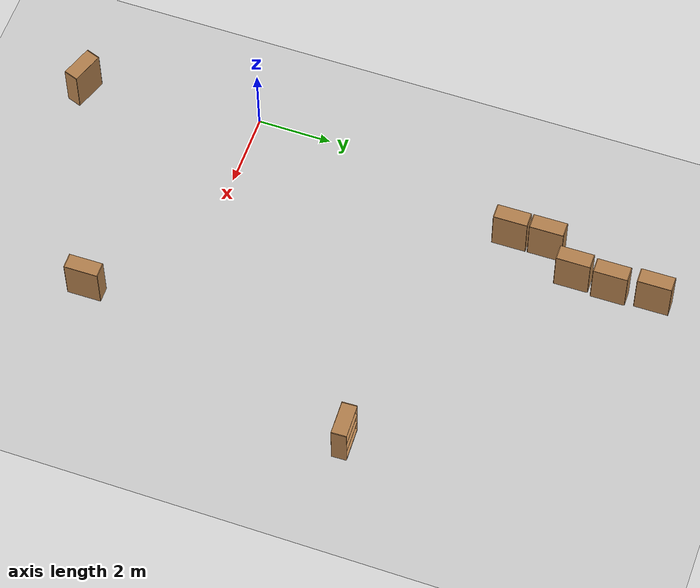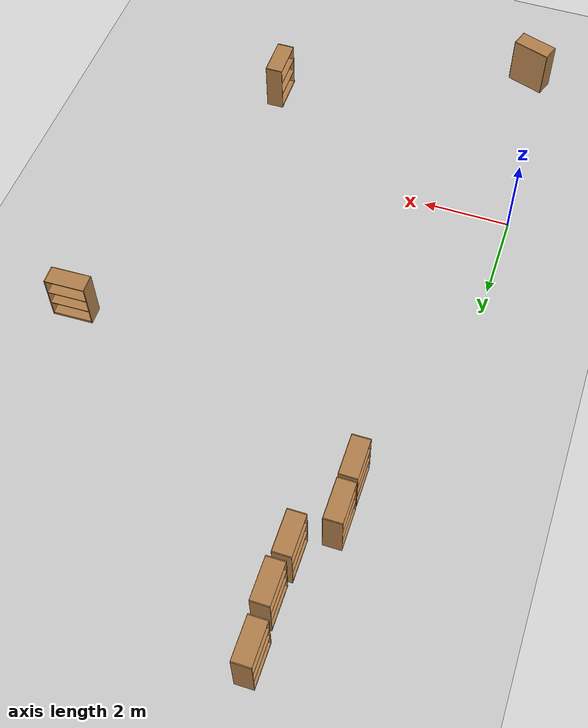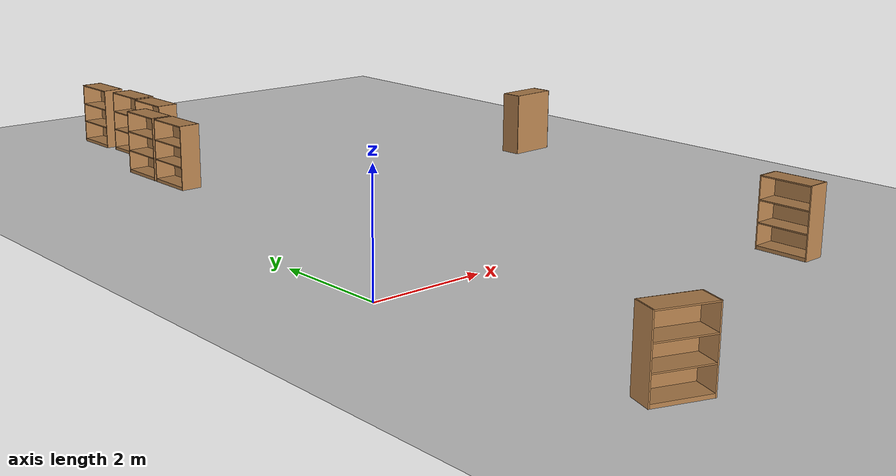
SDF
<sdf version="1.6">
 <world name="default">
  <model name="ground_plane">
   <static>1</static>
   <link name="link">
    <collision name="collision">
     <geometry><plane><normal>0 0 1</normal><size>100 100</size></plane></geometry>
     <surface>
      <contact><collide_bitmask>65535</collide_bitmask></contact>
      <friction><ode><mu>100</mu><mu2>50</mu2></ode></friction>
     </surface>
    </collision>
    <visual name="visual">
     <cast_shadows>0</cast_shadows>
     <geometry><plane><normal>0 0 1</normal><size>100 100</size></plane></geometry>
     <material>
      <script><uri>file://media/materials/scripts/gazebo.material</uri><name>Gazebo/Grey</name></script>
     </material>
    </visual>
   </link>
  </model>
  <model name="bookshelf_clone_2_clone_clone_0_clone_3_clone_clone_3">
   <static>1</static>
   <link name="link">
    <inertial><mass>1</mass></inertial>
    <collision name="back">
     <pose>0 0.005 0.6 0 -0 0</pose>
     <geometry><box><size>0.9 0.01 1.2</size></box></geometry>
    </collision>
    <visual name="visual1">
     <pose>0 0.005 0.6 0 -0 0</pose>
     <geometry><box><size>0.9 0.01 1.2</size></box></geometry>
     <material>
      <script><uri>file://media/materials/scripts/gazebo.material</uri><name>Gazebo/Wood</name></script>
     </material>
    </visual>
    <collision name="left_side">
     <pose>0.45 -0.195 0.6 0 -0 0</pose>
     <geometry><box><size>0.02 0.4 1.2</size></box></geometry>
    </collision>
    <visual name="visual2">
     <pose>0.45 -0.195 0.6 0 -0 0</pose>
     <geometry><box><size>0.02 0.4 1.2</size></box></geometry>
     <material>
      <script><uri>file://media/materials/scripts/gazebo.material</uri><name>Gazebo/Wood</name></script>
     </material>
    </visual>
    <collision name="right_side">
     <pose>-0.45 -0.195 0.6 0 -0 0</pose>
     <geometry><box><size>0.02 0.4 1.2</size></box></geometry>
    </collision>
    <visual name="visual3">
     <pose>-0.45 -0.195 0.6 0 -0 0</pose>
     <geometry><box><size>0.02 0.4 1.2</size></box></geometry>
     <material>
      <script><uri>file://media/materials/scripts/gazebo.material</uri><name>Gazebo/Wood</name></script>
     </material>
    </visual>
    <collision name="bottom">
     <pose>0 -0.195 0.03 0 -0 0</pose>
     <geometry><box><size>0.88 0.4 0.06</size></box></geometry>
    </collision>
    <visual name="visual4">
     <pose>0 -0.195 0.03 0 -0 0</pose>
     <geometry><box><size>0.88 0.4 0.06</size></box></geometry>
     <material>
      <script><uri>file://media/materials/scripts/gazebo.material</uri><name>Gazebo/Wood</name></script>
     </material>
    </visual>
    <collision name="top">
     <pose>0 -0.195 1.19 0 -0 0</pose>
     <geometry><box><size>0.88 0.4 0.02</size></box></geometry>
    </collision>
    <visual name="visual5">
     <pose>0 -0.195 1.19 0 -0 0</pose>
     <geometry><box><size>0.88 0.4 0.02</size></box></geometry>
     <material>
      <script><uri>file://media/materials/scripts/gazebo.material</uri><name>Gazebo/Wood</name></script>
     </material>
    </visual>
    <collision name="low_shelf">
     <pose>0 -0.195 0.43 0 -0 0</pose>
     <geometry><box><size>0.88 0.4 0.02</size></box></geometry>
    </collision>
    <visual name="visual6">
     <pose>0 -0.195 0.43 0 -0 0</pose>
     <geometry><box><size>0.88 0.4 0.02</size></box></geometry>
     <material>
      <script><uri>file://media/materials/scripts/gazebo.material</uri><name>Gazebo/Wood</name></script>
     </material>
    </visual>
    <collision name="high_shelf">
     <pose>0 -0.195 0.8 0 -0 0</pose>
     <geometry><box><size>0.88 0.4 0.02</size></box></geometry>
    </collision>
    <visual name="visual7">
     <pose>0 -0.195 0.8 0 -0 0</pose>
     <geometry><box><size>0.88 0.4 0.02</size></box></geometry>
     <material>
      <script><uri>file://media/materials/scripts/gazebo.material</uri><name>Gazebo/Wood</name></script>
     </material>
    </visual>
   </link>
   <pose>8.46412 5.18695 0 0 0 -3.10717</pose>
  </model>
  <model name="bookshelf_clone_2_clone_clone_0_clone_3_clone_0_clone_1_clone_clone_0_clone_1_clone_1_clone">
   <static>1</static>
   <link name="link">
    <inertial><mass>1</mass></inertial>
    <collision name="back">
     <pose>0 0.005 0.6 0 -0 0</pose>
     <geometry><box><size>0.9 0.01 1.2</size></box></geometry>
    </collision>
    <visual name="visual1">
     <pose>0 0.005 0.6 0 -0 0</pose>
     <geometry><box><size>0.9 0.01 1.2</size></box></geometry>
     <material>
      <script><uri>file://media/materials/scripts/gazebo.material</uri><name>Gazebo/Wood</name></script>
     </material>
    </visual>
    <collision name="left_side">
     <pose>0.45 -0.195 0.6 0 -0 0</pose>
     <geometry><box><size>0.02 0.4 1.2</size></box></geometry>
    </collision>
    <visual name="visual2">
     <pose>0.45 -0.195 0.6 0 -0 0</pose>
     <geometry><box><size>0.02 0.4 1.2</size></box></geometry>
     <material>
      <script><uri>file://media/materials/scripts/gazebo.material</uri><name>Gazebo/Wood</name></script>
     </material>
    </visual>
    <collision name="right_side">
     <pose>-0.45 -0.195 0.6 0 -0 0</pose>
     <geometry><box><size>0.02 0.4 1.2</size></box></geometry>
    </collision>
    <visual name="visual3">
     <pose>-0.45 -0.195 0.6 0 -0 0</pose>
     <geometry><box><size>0.02 0.4 1.2</size></box></geometry>
     <material>
      <script><uri>file://media/materials/scripts/gazebo.material</uri><name>Gazebo/Wood</name></script>
     </material>
    </visual>
    <collision name="bottom">
     <pose>0 -0.195 0.03 0 -0 0</pose>
     <geometry><box><size>0.88 0.4 0.06</size></box></geometry>
    </collision>
    <visual name="visual4">
     <pose>0 -0.195 0.03 0 -0 0</pose>
     <geometry><box><size>0.88 0.4 0.06</size></box></geometry>
     <material>
      <script><uri>file://media/materials/scripts/gazebo.material</uri><name>Gazebo/Wood</name></script>
     </material>
    </visual>
    <collision name="top">
     <pose>0 -0.195 1.19 0 -0 0</pose>
     <geometry><box><size>0.88 0.4 0.02</size></box></geometry>
    </collision>
    <visual name="visual5">
     <pose>0 -0.195 1.19 0 -0 0</pose>
     <geometry><box><size>0.88 0.4 0.02</size></box></geometry>
     <material>
      <script><uri>file://media/materials/scripts/gazebo.material</uri><name>Gazebo/Wood</name></script>
     </material>
    </visual>
    <collision name="low_shelf">
     <pose>0 -0.195 0.43 0 -0 0</pose>
     <geometry><box><size>0.88 0.4 0.02</size></box></geometry>
    </collision>
    <visual name="visual6">
     <pose>0 -0.195 0.43 0 -0 0</pose>
     <geometry><box><size>0.88 0.4 0.02</size></box></geometry>
     <material>
      <script><uri>file://media/materials/scripts/gazebo.material</uri><name>Gazebo/Wood</name></script>
     </material>
    </visual>
    <collision name="high_shelf">
     <pose>0 -0.195 0.8 0 -0 0</pose>
     <geometry><box><size>0.88 0.4 0.02</size></box></geometry>
    </collision>
    <visual name="visual7">
     <pose>0 -0.195 0.8 0 -0 0</pose>
     <geometry><box><size>0.88 0.4 0.02</size></box></geometry>
     <material>
      <script><uri>file://media/materials/scripts/gazebo.material</uri><name>Gazebo/Wood</name></script>
     </material>
    </visual>
   </link>
   <pose>2.24697 11.5083 0 0 0 -1.56003</pose>
  </model>
  <model name="bookshelf_clone_2_clone_clone_0_clone_3_clone_0_clone_1_clone_clone_0_clone_1_clone_1_clone_clone">
   <static>1</static>
   <link name="link">
    <inertial><mass>1</mass></inertial>
    <collision name="back">
     <pose>0 0.005 0.6 0 -0 0</pose>
     <geometry><box><size>0.9 0.01 1.2</size></box></geometry>
    </collision>
    <visual name="visual1">
     <pose>0 0.005 0.6 0 -0 0</pose>
     <geometry><box><size>0.9 0.01 1.2</size></box></geometry>
     <material>
      <script><uri>file://media/materials/scripts/gazebo.material</uri><name>Gazebo/Wood</name></script>
     </material>
    </visual>
    <collision name="left_side">
     <pose>0.45 -0.195 0.6 0 -0 0</pose>
     <geometry><box><size>0.02 0.4 1.2</size></box></geometry>
    </collision>
    <visual name="visual2">
     <pose>0.45 -0.195 0.6 0 -0 0</pose>
     <geometry><box><size>0.02 0.4 1.2</size></box></geometry>
     <material>
      <script><uri>file://media/materials/scripts/gazebo.material</uri><name>Gazebo/Wood</name></script>
     </material>
    </visual>
    <collision name="right_side">
     <pose>-0.45 -0.195 0.6 0 -0 0</pose>
     <geometry><box><size>0.02 0.4 1.2</size></box></geometry>
    </collision>
    <visual name="visual3">
     <pose>-0.45 -0.195 0.6 0 -0 0</pose>
     <geometry><box><size>0.02 0.4 1.2</size></box></geometry>
     <material>
      <script><uri>file://media/materials/scripts/gazebo.material</uri><name>Gazebo/Wood</name></script>
     </material>
    </visual>
    <collision name="bottom">
     <pose>0 -0.195 0.03 0 -0 0</pose>
     <geometry><box><size>0.88 0.4 0.06</size></box></geometry>
    </collision>
    <visual name="visual4">
     <pose>0 -0.195 0.03 0 -0 0</pose>
     <geometry><box><size>0.88 0.4 0.06</size></box></geometry>
     <material>
      <script><uri>file://media/materials/scripts/gazebo.material</uri><name>Gazebo/Wood</name></script>
     </material>
    </visual>
    <collision name="top">
     <pose>0 -0.195 1.19 0 -0 0</pose>
     <geometry><box><size>0.88 0.4 0.02</size></box></geometry>
    </collision>
    <visual name="visual5">
     <pose>0 -0.195 1.19 0 -0 0</pose>
     <geometry><box><size>0.88 0.4 0.02</size></box></geometry>
     <material>
      <script><uri>file://media/materials/scripts/gazebo.material</uri><name>Gazebo/Wood</name></script>
     </material>
    </visual>
    <collision name="low_shelf">
     <pose>0 -0.195 0.43 0 -0 0</pose>
     <geometry><box><size>0.88 0.4 0.02</size></box></geometry>
    </collision>
    <visual name="visual6">
     <pose>0 -0.195 0.43 0 -0 0</pose>
     <geometry><box><size>0.88 0.4 0.02</size></box></geometry>
     <material>
      <script><uri>file://media/materials/scripts/gazebo.material</uri><name>Gazebo/Wood</name></script>
     </material>
    </visual>
    <collision name="high_shelf">
     <pose>0 -0.195 0.8 0 -0 0</pose>
     <geometry><box><size>0.88 0.4 0.02</size></box></geometry>
    </collision>
    <visual name="visual7">
     <pose>0 -0.195 0.8 0 -0 0</pose>
     <geometry><box><size>0.88 0.4 0.02</size></box></geometry>
     <material>
      <script><uri>file://media/materials/scripts/gazebo.material</uri><name>Gazebo/Wood</name></script>
     </material>
    </visual>
   </link>
   <pose>1.57869 8.44289 0 0 0 -1.56003</pose>
  </model>
  <model name="bookshelf_clone_2_clone_clone_0_clone_3_clone_0_clone_1_clone_clone_0_clone_1_clone_1_clone_clone_0">
   <static>1</static>
   <link name="link">
    <inertial><mass>1</mass></inertial>
    <collision name="back">
     <pose>0 0.005 0.6 0 -0 0</pose>
     <geometry><box><size>0.9 0.01 1.2</size></box></geometry>
    </collision>
    <visual name="visual1">
     <pose>0 0.005 0.6 0 -0 0</pose>
     <geometry><box><size>0.9 0.01 1.2</size></box></geometry>
     <material>
      <script><uri>file://media/materials/scripts/gazebo.material</uri><name>Gazebo/Wood</name></script>
     </material>
    </visual>
    <collision name="left_side">
     <pose>0.45 -0.195 0.6 0 -0 0</pose>
     <geometry><box><size>0.02 0.4 1.2</size></box></geometry>
    </collision>
    <visual name="visual2">
     <pose>0.45 -0.195 0.6 0 -0 0</pose>
     <geometry><box><size>0.02 0.4 1.2</size></box></geometry>
     <material>
      <script><uri>file://media/materials/scripts/gazebo.material</uri><name>Gazebo/Wood</name></script>
     </material>
    </visual>
    <collision name="right_side">
     <pose>-0.45 -0.195 0.6 0 -0 0</pose>
     <geometry><box><size>0.02 0.4 1.2</size></box></geometry>
    </collision>
    <visual name="visual3">
     <pose>-0.45 -0.195 0.6 0 -0 0</pose>
     <geometry><box><size>0.02 0.4 1.2</size></box></geometry>
     <material>
      <script><uri>file://media/materials/scripts/gazebo.material</uri><name>Gazebo/Wood</name></script>
     </material>
    </visual>
    <collision name="bottom">
     <pose>0 -0.195 0.03 0 -0 0</pose>
     <geometry><box><size>0.88 0.4 0.06</size></box></geometry>
    </collision>
    <visual name="visual4">
     <pose>0 -0.195 0.03 0 -0 0</pose>
     <geometry><box><size>0.88 0.4 0.06</size></box></geometry>
     <material>
      <script><uri>file://media/materials/scripts/gazebo.material</uri><name>Gazebo/Wood</name></script>
     </material>
    </visual>
    <collision name="top">
     <pose>0 -0.195 1.19 0 -0 0</pose>
     <geometry><box><size>0.88 0.4 0.02</size></box></geometry>
    </collision>
    <visual name="visual5">
     <pose>0 -0.195 1.19 0 -0 0</pose>
     <geometry><box><size>0.88 0.4 0.02</size></box></geometry>
     <material>
      <script><uri>file://media/materials/scripts/gazebo.material</uri><name>Gazebo/Wood</name></script>
     </material>
    </visual>
    <collision name="low_shelf">
     <pose>0 -0.195 0.43 0 -0 0</pose>
     <geometry><box><size>0.88 0.4 0.02</size></box></geometry>
    </collision>
    <visual name="visual6">
     <pose>0 -0.195 0.43 0 -0 0</pose>
     <geometry><box><size>0.88 0.4 0.02</size></box></geometry>
     <material>
      <script><uri>file://media/materials/scripts/gazebo.material</uri><name>Gazebo/Wood</name></script>
     </material>
    </visual>
    <collision name="high_shelf">
     <pose>0 -0.195 0.8 0 -0 0</pose>
     <geometry><box><size>0.88 0.4 0.02</size></box></geometry>
    </collision>
    <visual name="visual7">
     <pose>0 -0.195 0.8 0 -0 0</pose>
     <geometry><box><size>0.88 0.4 0.02</size></box></geometry>
     <material>
      <script><uri>file://media/materials/scripts/gazebo.material</uri><name>Gazebo/Wood</name></script>
     </material>
    </visual>
   </link>
   <pose>1.59096 7.47631 0 0 0 -1.56003</pose>
  </model>
  <model name="bookshelf_clone_2_clone_clone_0_clone_3_clone_0_clone_1_clone_clone_0_clone_1_clone_1_clone_clone_1">
   <static>1</static>
   <link name="link">
    <inertial><mass>1</mass></inertial>
    <collision name="back">
     <pose>0 0.005 0.6 0 -0 0</pose>
     <geometry><box><size>0.9 0.01 1.2</size></box></geometry>
    </collision>
    <visual name="visual1">
     <pose>0 0.005 0.6 0 -0 0</pose>
     <geometry><box><size>0.9 0.01 1.2</size></box></geometry>
     <material>
      <script><uri>file://media/materials/scripts/gazebo.material</uri><name>Gazebo/Wood</name></script>
     </material>
    </visual>
    <collision name="left_side">
     <pose>0.45 -0.195 0.6 0 -0 0</pose>
     <geometry><box><size>0.02 0.4 1.2</size></box></geometry>
    </collision>
    <visual name="visual2">
     <pose>0.45 -0.195 0.6 0 -0 0</pose>
     <geometry><box><size>0.02 0.4 1.2</size></box></geometry>
     <material>
      <script><uri>file://media/materials/scripts/gazebo.material</uri><name>Gazebo/Wood</name></script>
     </material>
    </visual>
    <collision name="right_side">
     <pose>-0.45 -0.195 0.6 0 -0 0</pose>
     <geometry><box><size>0.02 0.4 1.2</size></box></geometry>
    </collision>
    <visual name="visual3">
     <pose>-0.45 -0.195 0.6 0 -0 0</pose>
     <geometry><box><size>0.02 0.4 1.2</size></box></geometry>
     <material>
      <script><uri>file://media/materials/scripts/gazebo.material</uri><name>Gazebo/Wood</name></script>
     </material>
    </visual>
    <collision name="bottom">
     <pose>0 -0.195 0.03 0 -0 0</pose>
     <geometry><box><size>0.88 0.4 0.06</size></box></geometry>
    </collision>
    <visual name="visual4">
     <pose>0 -0.195 0.03 0 -0 0</pose>
     <geometry><box><size>0.88 0.4 0.06</size></box></geometry>
     <material>
      <script><uri>file://media/materials/scripts/gazebo.material</uri><name>Gazebo/Wood</name></script>
     </material>
    </visual>
    <collision name="top">
     <pose>0 -0.195 1.19 0 -0 0</pose>
     <geometry><box><size>0.88 0.4 0.02</size></box></geometry>
    </collision>
    <visual name="visual5">
     <pose>0 -0.195 1.19 0 -0 0</pose>
     <geometry><box><size>0.88 0.4 0.02</size></box></geometry>
     <material>
      <script><uri>file://media/materials/scripts/gazebo.material</uri><name>Gazebo/Wood</name></script>
     </material>
    </visual>
    <collision name="low_shelf">
     <pose>0 -0.195 0.43 0 -0 0</pose>
     <geometry><box><size>0.88 0.4 0.02</size></box></geometry>
    </collision>
    <visual name="visual6">
     <pose>0 -0.195 0.43 0 -0 0</pose>
     <geometry><box><size>0.88 0.4 0.02</size></box></geometry>
     <material>
      <script><uri>file://media/materials/scripts/gazebo.material</uri><name>Gazebo/Wood</name></script>
     </material>
    </visual>
    <collision name="high_shelf">
     <pose>0 -0.195 0.8 0 -0 0</pose>
     <geometry><box><size>0.88 0.4 0.02</size></box></geometry>
    </collision>
    <visual name="visual7">
     <pose>0 -0.195 0.8 0 -0 0</pose>
     <geometry><box><size>0.88 0.4 0.02</size></box></geometry>
     <material>
      <script><uri>file://media/materials/scripts/gazebo.material</uri><name>Gazebo/Wood</name></script>
     </material>
    </visual>
   </link>
   <pose>2.32179 10.3701 0 0 0 -1.56003</pose>
  </model>
  <model name="bookshelf_clone_2_clone_clone_0_clone_3_clone_0_clone_1_clone_clone_0_clone_1_clone_1_clone_clone_2">
   <static>1</static>
   <link name="link">
    <inertial><mass>1</mass></inertial>
    <collision name="back">
     <pose>0 0.005 0.6 0 -0 0</pose>
     <geometry><box><size>0.9 0.01 1.2</size></box></geometry>
    </collision>
    <visual name="visual1">
     <pose>0 0.005 0.6 0 -0 0</pose>
     <geometry><box><size>0.9 0.01 1.2</size></box></geometry>
     <material>
      <script><uri>file://media/materials/scripts/gazebo.material</uri><name>Gazebo/Wood</name></script>
     </material>
    </visual>
    <collision name="left_side">
     <pose>0.45 -0.195 0.6 0 -0 0</pose>
     <geometry><box><size>0.02 0.4 1.2</size></box></geometry>
    </collision>
    <visual name="visual2">
     <pose>0.45 -0.195 0.6 0 -0 0</pose>
     <geometry><box><size>0.02 0.4 1.2</size></box></geometry>
     <material>
      <script><uri>file://media/materials/scripts/gazebo.material</uri><name>Gazebo/Wood</name></script>
     </material>
    </visual>
    <collision name="right_side">
     <pose>-0.45 -0.195 0.6 0 -0 0</pose>
     <geometry><box><size>0.02 0.4 1.2</size></box></geometry>
    </collision>
    <visual name="visual3">
     <pose>-0.45 -0.195 0.6 0 -0 0</pose>
     <geometry><box><size>0.02 0.4 1.2</size></box></geometry>
     <material>
      <script><uri>file://media/materials/scripts/gazebo.material</uri><name>Gazebo/Wood</name></script>
     </material>
    </visual>
    <collision name="bottom">
     <pose>0 -0.195 0.03 0 -0 0</pose>
     <geometry><box><size>0.88 0.4 0.06</size></box></geometry>
    </collision>
    <visual name="visual4">
     <pose>0 -0.195 0.03 0 -0 0</pose>
     <geometry><box><size>0.88 0.4 0.06</size></box></geometry>
     <material>
      <script><uri>file://media/materials/scripts/gazebo.material</uri><name>Gazebo/Wood</name></script>
     </material>
    </visual>
    <collision name="top">
     <pose>0 -0.195 1.19 0 -0 0</pose>
     <geometry><box><size>0.88 0.4 0.02</size></box></geometry>
    </collision>
    <visual name="visual5">
     <pose>0 -0.195 1.19 0 -0 0</pose>
     <geometry><box><size>0.88 0.4 0.02</size></box></geometry>
     <material>
      <script><uri>file://media/materials/scripts/gazebo.material</uri><name>Gazebo/Wood</name></script>
     </material>
    </visual>
    <collision name="low_shelf">
     <pose>0 -0.195 0.43 0 -0 0</pose>
     <geometry><box><size>0.88 0.4 0.02</size></box></geometry>
    </collision>
    <visual name="visual6">
     <pose>0 -0.195 0.43 0 -0 0</pose>
     <geometry><box><size>0.88 0.4 0.02</size></box></geometry>
     <material>
      <script><uri>file://media/materials/scripts/gazebo.material</uri><name>Gazebo/Wood</name></script>
     </material>
    </visual>
    <collision name="high_shelf">
     <pose>0 -0.195 0.8 0 -0 0</pose>
     <geometry><box><size>0.88 0.4 0.02</size></box></geometry>
    </collision>
    <visual name="visual7">
     <pose>0 -0.195 0.8 0 -0 0</pose>
     <geometry><box><size>0.88 0.4 0.02</size></box></geometry>
     <material>
      <script><uri>file://media/materials/scripts/gazebo.material</uri><name>Gazebo/Wood</name></script>
     </material>
    </visual>
   </link>
   <pose>2.2628 9.36533 0 0 0 -1.56003</pose>
  </model>
  <model name="bookshelf_clone_2_clone_clone_0_clone_3_clone_0_clone_1_clone_clone_0_clone_1_clone_1_clone_clone_0_clone">
   <static>1</static>
   <link name="link">
    <inertial><mass>1</mass></inertial>
    <collision name="back">
     <pose>0 0.005 0.6 0 -0 0</pose>
     <geometry><box><size>0.9 0.01 1.2</size></box></geometry>
    </collision>
    <visual name="visual1">
     <pose>0 0.005 0.6 0 -0 0</pose>
     <geometry><box><size>0.9 0.01 1.2</size></box></geometry>
     <material>
      <script><uri>file://media/materials/scripts/gazebo.material</uri><name>Gazebo/Wood</name></script>
     </material>
    </visual>
    <collision name="left_side">
     <pose>0.45 -0.195 0.6 0 -0 0</pose>
     <geometry><box><size>0.02 0.4 1.2</size></box></geometry>
    </collision>
    <visual name="visual2">
     <pose>0.45 -0.195 0.6 0 -0 0</pose>
     <geometry><box><size>0.02 0.4 1.2</size></box></geometry>
     <material>
      <script><uri>file://media/materials/scripts/gazebo.material</uri><name>Gazebo/Wood</name></script>
     </material>
    </visual>
    <collision name="right_side">
     <pose>-0.45 -0.195 0.6 0 -0 0</pose>
     <geometry><box><size>0.02 0.4 1.2</size></box></geometry>
    </collision>
    <visual name="visual3">
     <pose>-0.45 -0.195 0.6 0 -0 0</pose>
     <geometry><box><size>0.02 0.4 1.2</size></box></geometry>
     <material>
      <script><uri>file://media/materials/scripts/gazebo.material</uri><name>Gazebo/Wood</name></script>
     </material>
    </visual>
    <collision name="bottom">
     <pose>0 -0.195 0.03 0 -0 0</pose>
     <geometry><box><size>0.88 0.4 0.06</size></box></geometry>
    </collision>
    <visual name="visual4">
     <pose>0 -0.195 0.03 0 -0 0</pose>
     <geometry><box><size>0.88 0.4 0.06</size></box></geometry>
     <material>
      <script><uri>file://media/materials/scripts/gazebo.material</uri><name>Gazebo/Wood</name></script>
     </material>
    </visual>
    <collision name="top">
     <pose>0 -0.195 1.19 0 -0 0</pose>
     <geometry><box><size>0.88 0.4 0.02</size></box></geometry>
    </collision>
    <visual name="visual5">
     <pose>0 -0.195 1.19 0 -0 0</pose>
     <geometry><box><size>0.88 0.4 0.02</size></box></geometry>
     <material>
      <script><uri>file://media/materials/scripts/gazebo.material</uri><name>Gazebo/Wood</name></script>
     </material>
    </visual>
    <collision name="low_shelf">
     <pose>0 -0.195 0.43 0 -0 0</pose>
     <geometry><box><size>0.88 0.4 0.02</size></box></geometry>
    </collision>
    <visual name="visual6">
     <pose>0 -0.195 0.43 0 -0 0</pose>
     <geometry><box><size>0.88 0.4 0.02</size></box></geometry>
     <material>
      <script><uri>file://media/materials/scripts/gazebo.material</uri><name>Gazebo/Wood</name></script>
     </material>
    </visual>
    <collision name="high_shelf">
     <pose>0 -0.195 0.8 0 -0 0</pose>
     <geometry><box><size>0.88 0.4 0.02</size></box></geometry>
    </collision>
    <visual name="visual7">
     <pose>0 -0.195 0.8 0 -0 0</pose>
     <geometry><box><size>0.88 0.4 0.02</size></box></geometry>
     <material>
      <script><uri>file://media/materials/scripts/gazebo.material</uri><name>Gazebo/Wood</name></script>
     </material>
    </visual>
   </link>
   <pose>6.61687 -2.35373 0 0 0 -1.56003</pose>
  </model>
  <model name="bookshelf_clone_2_clone_clone_0_clone_3_clone_0_clone_clone_1_clone_clone">
   <static>1</static>
   <link name="link">
    <inertial><mass>1</mass></inertial>
    <collision name="back">
     <pose>0 0.005 0.6 0 -0 0</pose>
     <geometry><box><size>0.9 0.01 1.2</size></box></geometry>
    </collision>
    <visual name="visual1">
     <pose>0 0.005 0.6 0 -0 0</pose>
     <geometry><box><size>0.9 0.01 1.2</size></box></geometry>
     <material>
      <script><uri>file://media/materials/scripts/gazebo.material</uri><name>Gazebo/Wood</name></script>
     </material>
    </visual>
    <collision name="left_side">
     <pose>0.45 -0.195 0.6 0 -0 0</pose>
     <geometry><box><size>0.02 0.4 1.2</size></box></geometry>
    </collision>
    <visual name="visual2">
     <pose>0.45 -0.195 0.6 0 -0 0</pose>
     <geometry><box><size>0.02 0.4 1.2</size></box></geometry>
     <material>
      <script><uri>file://media/materials/scripts/gazebo.material</uri><name>Gazebo/Wood</name></script>
     </material>
    </visual>
    <collision name="right_side">
     <pose>-0.45 -0.195 0.6 0 -0 0</pose>
     <geometry><box><size>0.02 0.4 1.2</size></box></geometry>
    </collision>
    <visual name="visual3">
     <pose>-0.45 -0.195 0.6 0 -0 0</pose>
     <geometry><box><size>0.02 0.4 1.2</size></box></geometry>
     <material>
      <script><uri>file://media/materials/scripts/gazebo.material</uri><name>Gazebo/Wood</name></script>
     </material>
    </visual>
    <collision name="bottom">
     <pose>0 -0.195 0.03 0 -0 0</pose>
     <geometry><box><size>0.88 0.4 0.06</size></box></geometry>
    </collision>
    <visual name="visual4">
     <pose>0 -0.195 0.03 0 -0 0</pose>
     <geometry><box><size>0.88 0.4 0.06</size></box></geometry>
     <material>
      <script><uri>file://media/materials/scripts/gazebo.material</uri><name>Gazebo/Wood</name></script>
     </material>
    </visual>
    <collision name="top">
     <pose>0 -0.195 1.19 0 -0 0</pose>
     <geometry><box><size>0.88 0.4 0.02</size></box></geometry>
    </collision>
    <visual name="visual5">
     <pose>0 -0.195 1.19 0 -0 0</pose>
     <geometry><box><size>0.88 0.4 0.02</size></box></geometry>
     <material>
      <script><uri>file://media/materials/scripts/gazebo.material</uri><name>Gazebo/Wood</name></script>
     </material>
    </visual>
    <collision name="low_shelf">
     <pose>0 -0.195 0.43 0 -0 0</pose>
     <geometry><box><size>0.88 0.4 0.02</size></box></geometry>
    </collision>
    <visual name="visual6">
     <pose>0 -0.195 0.43 0 -0 0</pose>
     <geometry><box><size>0.88 0.4 0.02</size></box></geometry>
     <material>
      <script><uri>file://media/materials/scripts/gazebo.material</uri><name>Gazebo/Wood</name></script>
     </material>
    </visual>
    <collision name="high_shelf">
     <pose>0 -0.195 0.8 0 -0 0</pose>
     <geometry><box><size>0.88 0.4 0.02</size></box></geometry>
    </collision>
    <visual name="visual7">
     <pose>0 -0.195 0.8 0 -0 0</pose>
     <geometry><box><size>0.88 0.4 0.02</size></box></geometry>
     <material>
      <script><uri>file://media/materials/scripts/gazebo.material</uri><name>Gazebo/Wood</name></script>
     </material>
    </visual>
   </link>
   <pose>0.664106 -4.58607 0 0 0 -0.333094</pose>
  </model>
 </world>
</sdf>
